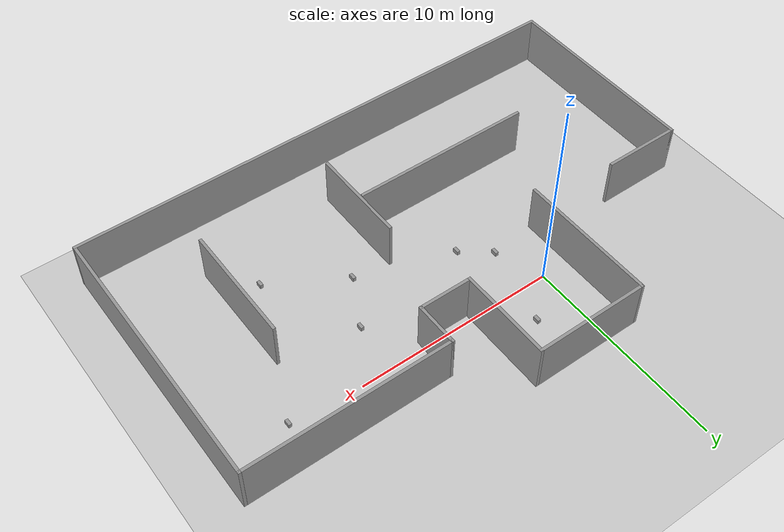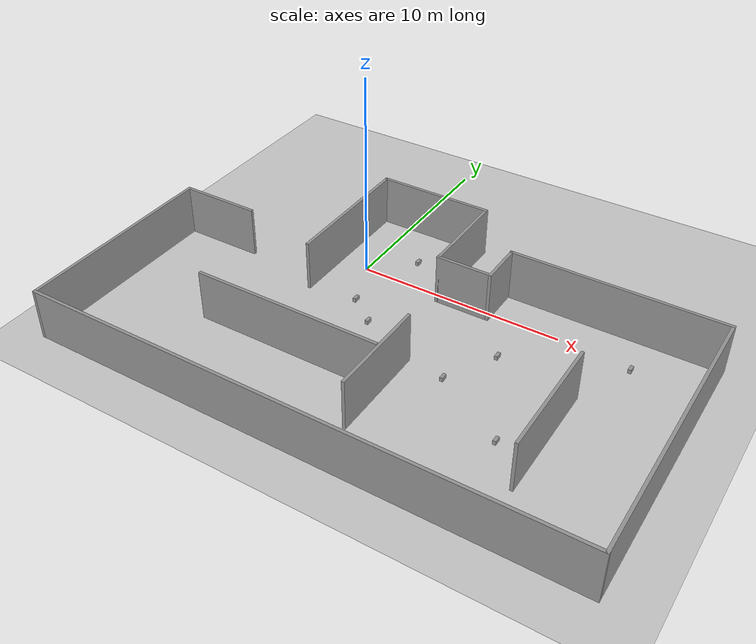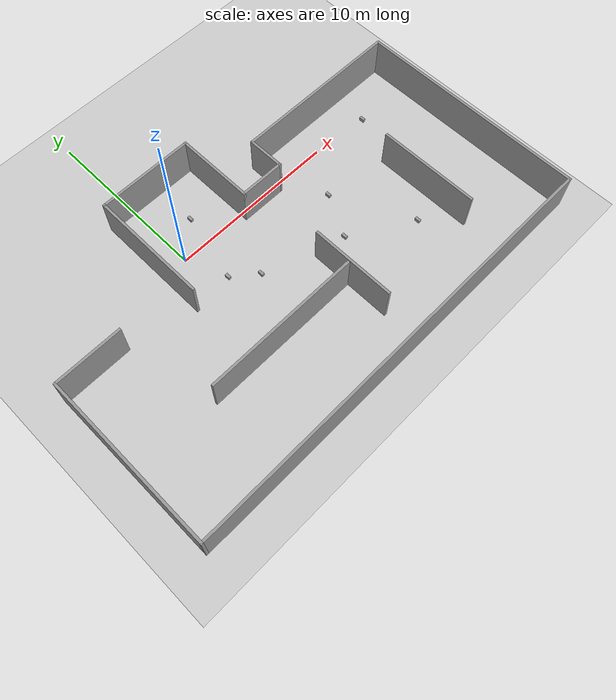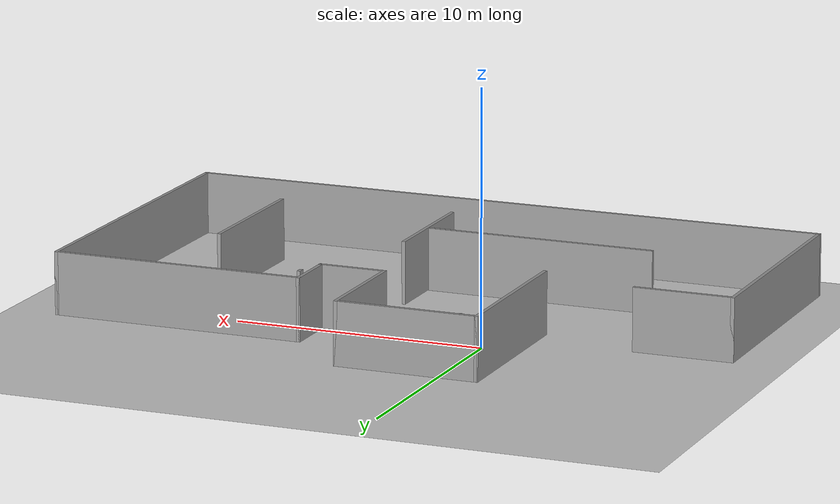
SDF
<sdf version="1.7">
 <world name="default">
  <light name="sun" type="directional">
   <pose>0 0 10 0 -0 0</pose>
   <diffuse>0.8 0.8 0.8 1</diffuse>
   <specular>0.2 0.2 0.2 1</specular>
   <attenuation>
    <range>1000</range>
    <constant>0.9</constant>
    <linear>0.01</linear>
    <quadratic>0.001</quadratic>
   </attenuation>
   <direction>-0.5 0.1 -0.9</direction>
   <spot><inner_angle>0</inner_angle><outer_angle>0</outer_angle><falloff>0</falloff></spot>
  </light>
  <model name="ground_plane">
   <static>1</static>
   <link name="link">
    <collision name="collision">
     <geometry><plane><normal>0 0 1</normal><size>100 100</size></plane></geometry>
     <surface>
      <contact><collide_bitmask>65535</collide_bitmask></contact>
      <friction><ode><mu>100</mu><mu2>50</mu2></ode></friction>
     </surface>
    </collision>
    <visual name="visual">
     <cast_shadows>0</cast_shadows>
     <geometry><plane><normal>0 0 1</normal><size>100 100</size></plane></geometry>
     <material>
      <script><uri>file://media/materials/scripts/gazebo.material</uri><name>Gazebo/Grey</name></script>
     </material>
    </visual>
   </link>
  </model>
  <gravity>0 0 -9.8</gravity>
  <magnetic_field>6e-06 2.3e-05 -4.2e-05</magnetic_field>
  <atmosphere type="adiabatic"/>
  <physics type="ode">
   <max_step_size>0.001</max_step_size>
   <real_time_factor>1</real_time_factor>
   <real_time_update_rate>1000</real_time_update_rate>
  </physics>
  <scene><ambient>0.4 0.4 0.4 1</ambient><background>0.7 0.7 0.7 1</background><shadows>1</shadows></scene>
  <audio><device>default</device></audio>
  <spherical_coordinates>
   <surface_model>EARTH_WGS84</surface_model>
   <latitude_deg>0</latitude_deg>
   <longitude_deg>0</longitude_deg>
   <elevation>0</elevation>
   <heading_deg>0</heading_deg>
  </spherical_coordinates>
  <model name="obstacle_world">
   <pose>3.75 -3.84 0 0 -0 0</pose>
   <link name="Wall_0">
    <collision name="Wall_0_Collision">
     <geometry><box><size>7 0.15 2.5</size></box></geometry>
     <pose>0 0 1.25 0 -0 0</pose>
    </collision>
    <visual name="Wall_0_Visual">
     <pose>0 0 1.25 0 -0 0</pose>
     <geometry><box><size>7 0.15 2.5</size></box></geometry>
     <material>
      <script><uri>file://media/materials/scripts/gazebo.material</uri><name>Gazebo/Grey</name></script>
      <ambient>1 1 1 1</ambient>
     </material>
     <meta><layer>0</layer></meta>
    </visual>
    <pose>-5.25 4.625 0 0 -0 1.5708</pose>
   </link>
   <link name="Wall_1">
    <collision name="Wall_1_Collision">
     <geometry><box><size>5.75 0.15 2.5</size></box></geometry>
     <pose>0 0 1.25 0 -0 0</pose>
    </collision>
    <visual name="Wall_1_Visual">
     <pose>0 0 1.25 0 -0 0</pose>
     <geometry><box><size>5.75 0.15 2.5</size></box></geometry>
     <material>
      <script><uri>file://media/materials/scripts/gazebo.material</uri><name>Gazebo/Grey</name></script>
      <ambient>1 1 1 1</ambient>
     </material>
     <meta><layer>0</layer></meta>
    </visual>
    <pose>-2.45 8.05 0 0 -0 0</pose>
   </link>
   <link name="Wall_11">
    <collision name="Wall_11_Collision">
     <geometry><box><size>5 0.15 2.5</size></box></geometry>
     <pose>0 0 1.25 0 -0 0</pose>
    </collision>
    <visual name="Wall_11_Visual">
     <pose>0 0 1.25 0 -0 0</pose>
     <geometry><box><size>5 0.15 2.5</size></box></geometry>
     <material>
      <script><uri>file://media/materials/scripts/gazebo.material</uri><name>Gazebo/Grey</name></script>
      <ambient>1 1 1 1</ambient>
     </material>
     <meta><layer>0</layer></meta>
    </visual>
    <pose>1.36452 -3.33542 0 0 -0 -1.5708</pose>
   </link>
   <link name="Wall_13">
    <collision name="Wall_13_Collision">
     <geometry><box><size>9.25 0.15 2.5</size></box></geometry>
     <pose>0 0 1.25 0 -0 0</pose>
    </collision>
    <visual name="Wall_13_Visual">
     <pose>0 0 1.25 0 -0 0</pose>
     <geometry><box><size>9.25 0.15 2.5</size></box></geometry>
     <material>
      <script><uri>file://media/materials/scripts/gazebo.material</uri><name>Gazebo/Grey</name></script>
      <ambient>1 1 1 1</ambient>
     </material>
     <meta><layer>0</layer></meta>
    </visual>
    <pose>-3.37006 -3.18696 0 0 -0 3.14159</pose>
   </link>
   <link name="Wall_15">
    <collision name="Wall_15_Collision">
     <geometry><box><size>6 0.15 2.5</size></box></geometry>
     <pose>0 0 1.25 0 -0 0</pose>
    </collision>
    <visual name="Wall_15_Visual">
     <pose>0 0 1.25 0 -0 0</pose>
     <geometry><box><size>6 0.15 2.5</size></box></geometry>
     <material>
      <script><uri>file://media/materials/scripts/gazebo.material</uri><name>Gazebo/Grey</name></script>
      <ambient>1 1 1 1</ambient>
     </material>
     <meta><layer>0</layer></meta>
    </visual>
    <pose>8.44022 -2.23085 0 0 -0 1.5708</pose>
   </link>
   <link name="Wall_2">
    <collision name="Wall_2_Collision">
     <geometry><box><size>4.75 0.15 2.5</size></box></geometry>
     <pose>0 0 1.25 0 -0 0</pose>
    </collision>
    <visual name="Wall_2_Visual">
     <pose>0 0 1.25 0 -0 0</pose>
     <geometry><box><size>4.75 0.15 2.5</size></box></geometry>
     <material>
      <script><uri>file://media/materials/scripts/gazebo.material</uri><name>Gazebo/Grey</name></script>
      <ambient>1 1 1 1</ambient>
     </material>
     <meta><layer>0</layer></meta>
    </visual>
    <pose>0.35 5.75 0 0 -0 -1.5708</pose>
   </link>
   <link name="Wall_3">
    <collision name="Wall_3_Collision">
     <geometry><box><size>2.75 0.15 2.5</size></box></geometry>
     <pose>0 0 1.25 0 -0 0</pose>
    </collision>
    <visual name="Wall_3_Visual">
     <pose>0 0 1.25 0 -0 0</pose>
     <geometry><box><size>2.75 0.15 2.5</size></box></geometry>
     <material>
      <script><uri>file://media/materials/scripts/gazebo.material</uri><name>Gazebo/Grey</name></script>
      <ambient>1 1 1 1</ambient>
     </material>
     <meta><layer>0</layer></meta>
    </visual>
    <pose>1.65 3.45 0 0 -0 0</pose>
   </link>
   <link name="Wall_4">
    <collision name="Wall_4_Collision">
     <geometry><box><size>2.25 0.15 2.5</size></box></geometry>
     <pose>0 0 1.25 0 -0 0</pose>
    </collision>
    <visual name="Wall_4_Visual">
     <pose>0 0 1.25 0 -0 0</pose>
     <geometry><box><size>2.25 0.15 2.5</size></box></geometry>
     <material>
      <script><uri>file://media/materials/scripts/gazebo.material</uri><name>Gazebo/Grey</name></script>
      <ambient>1 1 1 1</ambient>
     </material>
     <meta><layer>0</layer></meta>
    </visual>
    <pose>2.95 4.5 0 0 -0 1.5708</pose>
   </link>
   <link name="Wall_5">
    <collision name="Wall_5_Collision">
     <geometry><box><size>10.25 0.15 2.5</size></box></geometry>
     <pose>0 0 1.25 0 -0 0</pose>
    </collision>
    <visual name="Wall_5_Visual">
     <pose>0 0 1.25 0 -0 0</pose>
     <geometry><box><size>10.25 0.15 2.5</size></box></geometry>
     <material>
      <script><uri>file://media/materials/scripts/gazebo.material</uri><name>Gazebo/Grey</name></script>
      <ambient>1 1 1 1</ambient>
     </material>
     <meta><layer>0</layer></meta>
    </visual>
    <pose>8 5.55 0 0 -0 0</pose>
   </link>
   <link name="Wall_6">
    <collision name="Wall_6_Collision">
     <geometry><box><size>13.75 0.15 2.5</size></box></geometry>
     <pose>0 0 1.25 0 -0 0</pose>
    </collision>
    <visual name="Wall_6_Visual">
     <pose>0 0 1.25 0 -0 0</pose>
     <geometry><box><size>13.75 0.15 2.5</size></box></geometry>
     <material>
      <script><uri>file://media/materials/scripts/gazebo.material</uri><name>Gazebo/Grey</name></script>
      <ambient>1 1 1 1</ambient>
     </material>
     <meta><layer>0</layer></meta>
    </visual>
    <pose>13.05 -1.25 0 0 -0 -1.5708</pose>
   </link>
   <link name="Wall_7">
    <collision name="Wall_7_Collision">
     <geometry><box><size>26.25 0.15 2.5</size></box></geometry>
     <pose>0 0 1.25 0 -0 0</pose>
    </collision>
    <visual name="Wall_7_Visual">
     <pose>0 0 1.25 0 -0 0</pose>
     <geometry><box><size>26.25 0.15 2.5</size></box></geometry>
     <material>
      <script><uri>file://media/materials/scripts/gazebo.material</uri><name>Gazebo/Grey</name></script>
      <ambient>1 1 1 1</ambient>
     </material>
     <meta><layer>0</layer></meta>
    </visual>
    <pose>0 -8.05 0 0 -0 3.14159</pose>
   </link>
   <link name="Wall_8">
    <collision name="Wall_8_Collision">
     <geometry><box><size>10.25 0.15 2.5</size></box></geometry>
     <pose>0 0 1.25 0 -0 0</pose>
    </collision>
    <visual name="Wall_8_Visual">
     <pose>0 0 1.25 0 -0 0</pose>
     <geometry><box><size>10.25 0.15 2.5</size></box></geometry>
     <material>
      <script><uri>file://media/materials/scripts/gazebo.material</uri><name>Gazebo/Grey</name></script>
      <ambient>1 1 1 1</ambient>
     </material>
     <meta><layer>0</layer></meta>
    </visual>
    <pose>-13.05 -3 0 0 -0 1.5708</pose>
   </link>
   <link name="Wall_9">
    <collision name="Wall_9_Collision">
     <geometry><box><size>4 0.15 2.5</size></box></geometry>
     <pose>0 0 1.25 0 -0 0</pose>
    </collision>
    <visual name="Wall_9_Visual">
     <pose>0 0 1.25 0 -0 0</pose>
     <geometry><box><size>4 0.15 2.5</size></box></geometry>
     <material>
      <script><uri>file://media/materials/scripts/gazebo.material</uri><name>Gazebo/Grey</name></script>
      <ambient>1 1 1 1</ambient>
     </material>
     <meta><layer>0</layer></meta>
    </visual>
    <pose>-11.125 2.05 0 0 -0 0</pose>
   </link>
   <static>1</static>
  </model>
  <model name="unit_box">
   <pose>1.88087 1.70305 0.103354 6e-06 4e-06 -3.3e-05</pose>
   <link name="link">
    <inertial>
     <mass>1</mass>
     <inertia>
      <ixx>0.166667</ixx>
      <ixy>0</ixy>
      <ixz>0</ixz>
      <iyy>0.166667</iyy>
      <iyz>0</iyz>
      <izz>0.166667</izz>
     </inertia>
    </inertial>
    <collision name="collision"><geometry><box><size>0.157367 0.31774 0.20671</size></box></geometry></collision>
    <visual name="visual">
     <geometry><box><size>0.157367 0.31774 0.20671</size></box></geometry>
     <material>
      <script><name>Gazebo/Grey</name><uri>file://media/materials/scripts/gazebo.material</uri></script>
     </material>
    </visual>
   </link>
  </model>
  <model name="unit_box_clone">
   <pose>2.26787 -3.44391 0.103355 0 0 -1.4e-05</pose>
   <link name="link">
    <inertial>
     <mass>1</mass>
     <inertia>
      <ixx>0.166667</ixx>
      <ixy>0</ixy>
      <ixz>0</ixz>
      <iyy>0.166667</iyy>
      <iyz>0</iyz>
      <izz>0.166667</izz>
     </inertia>
    </inertial>
    <collision name="collision"><geometry><box><size>0.157367 0.31774 0.20671</size></box></geometry></collision>
    <visual name="visual">
     <geometry><box><size>0.157367 0.31774 0.20671</size></box></geometry>
     <material>
      <script><name>Gazebo/Grey</name><uri>file://media/materials/scripts/gazebo.material</uri></script>
     </material>
    </visual>
   </link>
  </model>
  <model name="unit_box_clone_0">
   <pose>8.3073 -2.53609 0.103354 6e-06 -4e-06 -4.5e-05</pose>
   <link name="link">
    <inertial>
     <mass>1</mass>
     <inertia>
      <ixx>0.166667</ixx>
      <ixy>0</ixy>
      <ixz>0</ixz>
      <iyy>0.166667</iyy>
      <iyz>0</iyz>
      <izz>0.166667</izz>
     </inertia>
    </inertial>
    <collision name="collision"><geometry><box><size>0.157367 0.31774 0.20671</size></box></geometry></collision>
    <visual name="visual">
     <geometry><box><size>0.157367 0.31774 0.20671</size></box></geometry>
     <material>
      <script><name>Gazebo/Grey</name><uri>file://media/materials/scripts/gazebo.material</uri></script>
     </material>
    </visual>
   </link>
  </model>
  <model name="unit_box_clone_1">
   <pose>7 -5 0.103356 3e-06 1e-06 -2.9e-05</pose>
   <link name="link">
    <inertial>
     <mass>1</mass>
     <inertia>
      <ixx>0.166667</ixx>
      <ixy>0</ixy>
      <ixz>0</ixz>
      <iyy>0.166667</iyy>
      <iyz>0</iyz>
      <izz>0.166667</izz>
     </inertia>
    </inertial>
    <collision name="collision"><geometry><box><size>0.157367 0.31774 0.20671</size></box></geometry></collision>
    <visual name="visual">
     <geometry><box><size>0.157367 0.31774 0.20671</size></box></geometry>
     <material>
      <script><name>Gazebo/Grey</name><uri>file://media/materials/scripts/gazebo.material</uri></script>
     </material>
    </visual>
   </link>
  </model>
  <model name="unit_box_clone_2">
   <pose>13.4918 -0.306881 0.103354 6e-06 3e-06 -3.7e-05</pose>
   <link name="link">
    <inertial>
     <mass>1</mass>
     <inertia>
      <ixx>0.166667</ixx>
      <ixy>0</ixy>
      <ixz>0</ixz>
      <iyy>0.166667</iyy>
      <iyz>0</iyz>
      <izz>0.166667</izz>
     </inertia>
    </inertial>
    <collision name="collision"><geometry><box><size>0.157367 0.31774 0.20671</size></box></geometry></collision>
    <visual name="visual">
     <geometry><box><size>0.157367 0.31774 0.20671</size></box></geometry>
     <material>
      <script><name>Gazebo/Grey</name><uri>file://media/materials/scripts/gazebo.material</uri></script>
     </material>
    </visual>
   </link>
  </model>
  <model name="unit_box_clone_3">
   <pose>0.904844 -2.3455 0.103356 3e-06 1e-06 -3.4e-05</pose>
   <link name="link">
    <inertial>
     <mass>1</mass>
     <inertia>
      <ixx>0.166667</ixx>
      <ixy>0</ixy>
      <ixz>0</ixz>
      <iyy>0.166667</iyy>
      <iyz>0</iyz>
      <izz>0.166667</izz>
     </inertia>
    </inertial>
    <collision name="collision"><geometry><box><size>0.157367 0.31774 0.20671</size></box></geometry></collision>
    <visual name="visual">
     <geometry><box><size>0.157367 0.31774 0.20671</size></box></geometry>
     <material>
      <script><name>Gazebo/Grey</name><uri>file://media/materials/scripts/gazebo.material</uri></script>
     </material>
    </visual>
   </link>
  </model>
  <model name="unit_box_clone_4">
   <pose>10.567 -7.12353 0.103354 6e-06 -3e-06 -4e-06</pose>
   <link name="link">
    <inertial>
     <mass>1</mass>
     <inertia>
      <ixx>0.166667</ixx>
      <ixy>0</ixy>
      <ixz>0</ixz>
      <iyy>0.166667</iyy>
      <iyz>0</iyz>
      <izz>0.166667</izz>
     </inertia>
    </inertial>
    <collision name="collision"><geometry><box><size>0.157367 0.31774 0.20671</size></box></geometry></collision>
    <visual name="visual">
     <geometry><box><size>0.157367 0.31774 0.20671</size></box></geometry>
     <material>
      <script><name>Gazebo/Grey</name><uri>file://media/materials/scripts/gazebo.material</uri></script>
     </material>
    </visual>
   </link>
  </model>
 </world>
</sdf>
